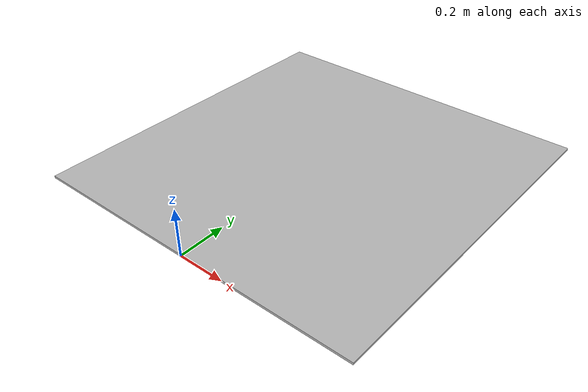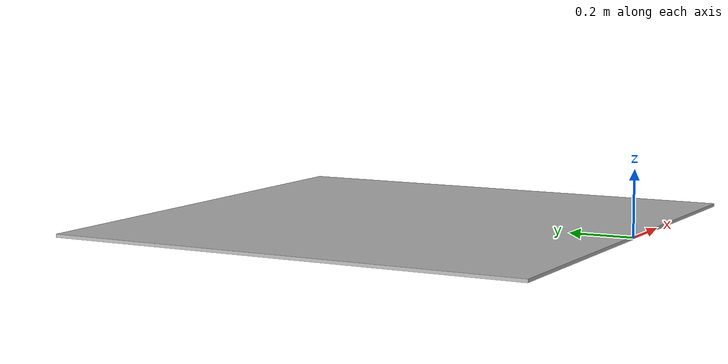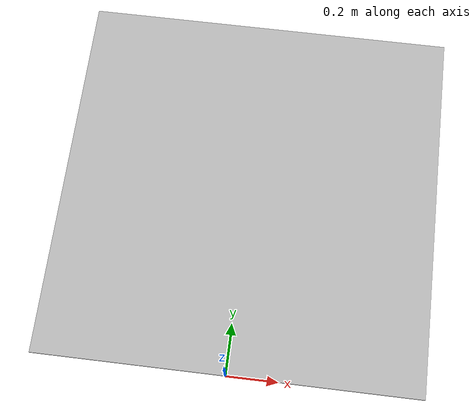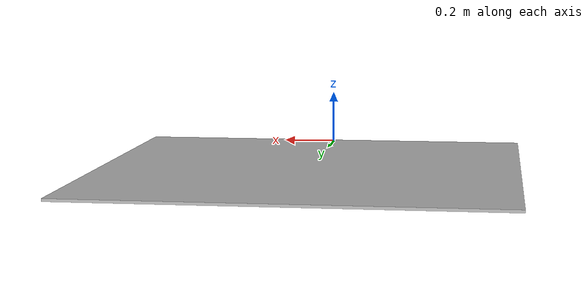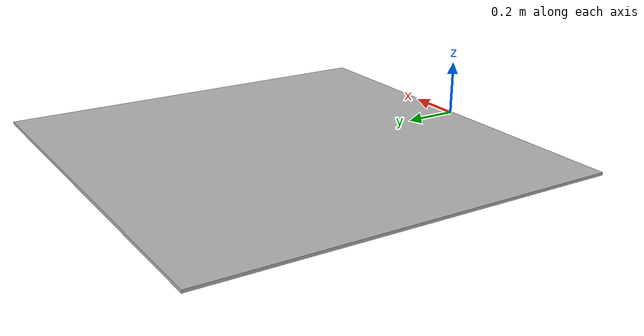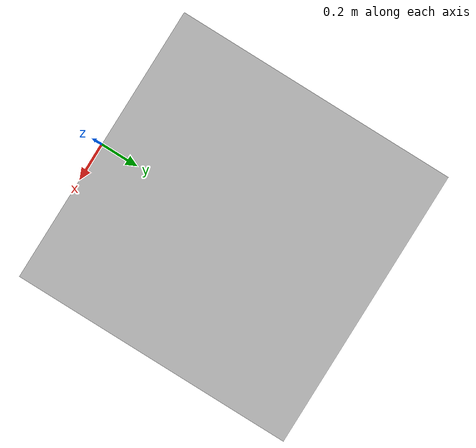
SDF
<?xml version="1.0"?>
<sdf version="1.4">
  <model name="apriltag">
    <static>false</static>
    <link name="link">
      <pose>0 0 0 0 1.57079632679 1.57079632679</pose>

      <!-- 开启运动学模式：它不受其他物体撞击影响，但能完美托举和推动其他物体 -->
      <kinematic>true</kinematic>

      <inertial>
        <mass>1000000.0</mass> <!-- 保留你的大质量也没问题 -->
      </inertial>

      <visual name="visual">
        <geometry>
          <mesh>
            <!-- 本质是0.01x0.5x0.5 -->
            <uri>model://apriltag/meshes/apriltag.dae</uri>
            <scale>1.0 3.0 3.0</scale>
          </mesh>
        </geometry>
      </visual>
      <!-- ======= 下面是你必须增加的碰撞与摩擦力属性 ======= -->
      <collision name="collision">
        <pose>0 0 0.75 0 0 0</pose>
        <geometry>
          <box>
            <size>0.01 1.5 1.5</size>
          </box>
        </geometry>

        <!-- 给表面增加极大的摩擦力，确保在圆周运动时东西不会被离心力甩飞 -->
        <surface>
          <friction>
            <ode>
              <mu>100.0</mu>
              <mu2>100.0</mu2>
            </ode>
          </friction>
        </surface>
      </collision>
    </link>
    <plugin name="planar_move" filename="libgazebo_ros_planar_move.so">
      <commandTopic>/apriltag/cmd_vel</commandTopic>
      <odometryTopic>/apriltag/odom</odometryTopic>
      <odometryFrame>odom</odometryFrame>
      <robotBaseFrame>apriltag</robotBaseFrame>
      <odometryRate>50</odometryRate>
    </plugin>
  </model>
</sdf>
